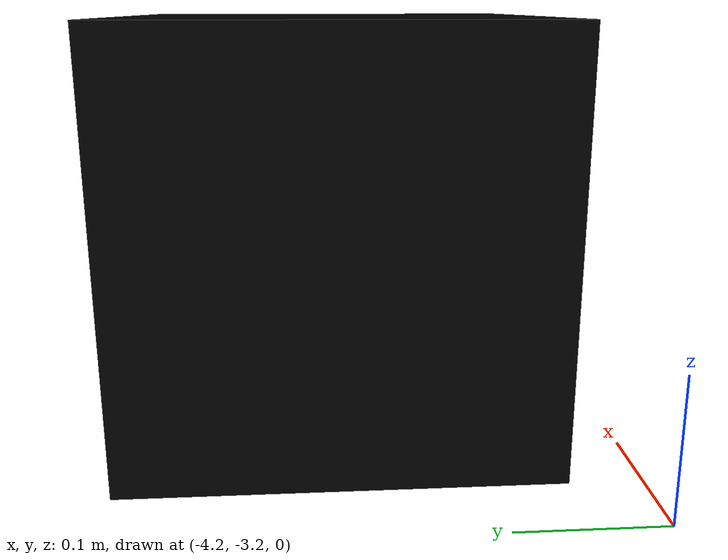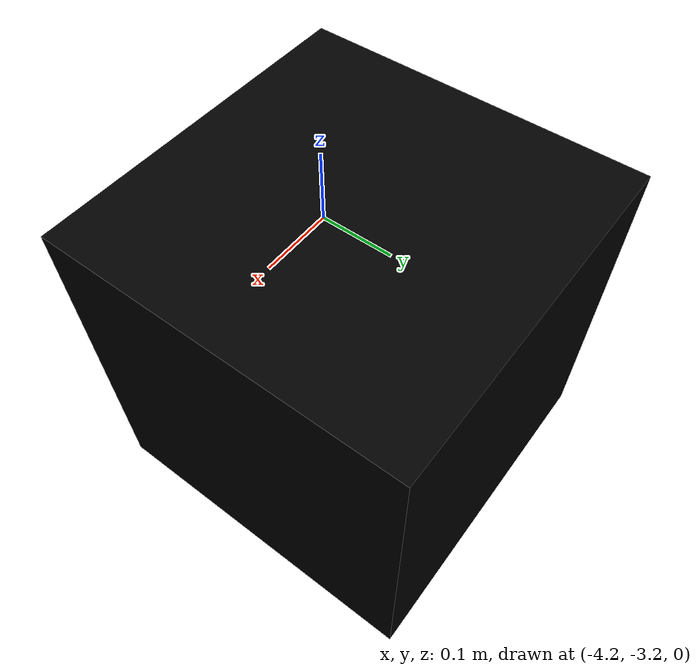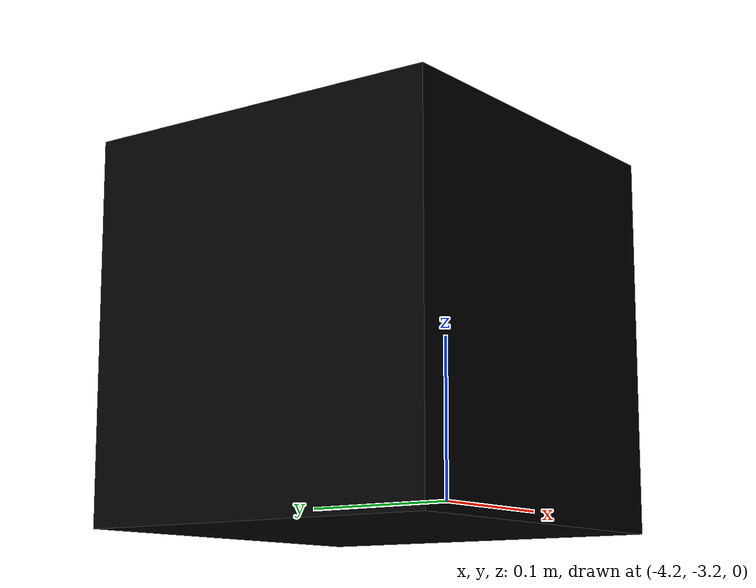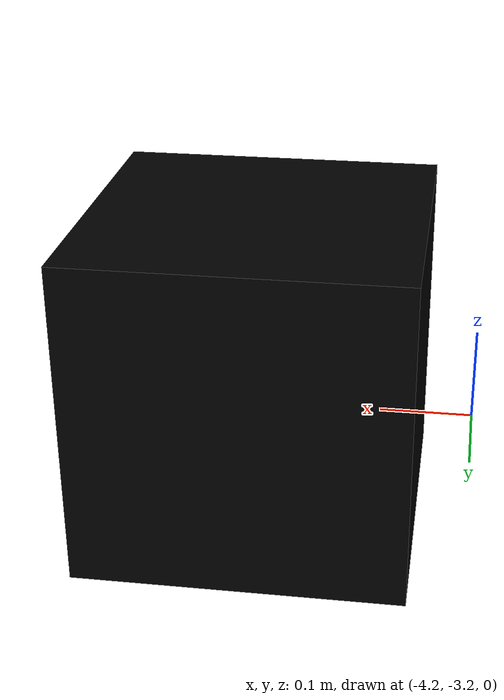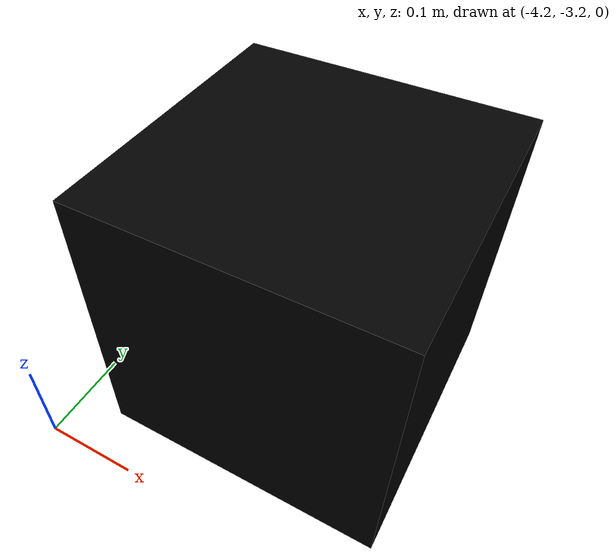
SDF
<?xml version='1.0'?>
<sdf version='1.4'>
  <model name="AruCo_Block_6">
    <static>true</static>
    <link name='chassis'>
            <pose>-4 -3 0.15 0 0 0</pose>

            <collision name='collision'>
              <geometry>
                <box>
                  <size>.3 .3 .3</size>
                </box>
              </geometry>
            </collision>

            <visual name='visual_6'>
              <geometry>
                <box>
                  <size>.3 .3 .3</size>
                </box>
              </geometry>
              <material>
                <script>
                <uri>model://AruCo_Block_6/materials/scripts</uri>
                <uri>model://AruCo_Block_6/materials/textures</uri>
                <name>block6</name>
                </script>
                <ambient>0 0 0 1</ambient>
                <diffuse>0 0 0 1</diffuse>
                <specular>0 0 0 0</specular>
                <emissive>1 1 1 1</emissive>
              </material>
            </visual>
          </link>
  </model>
</sdf>
